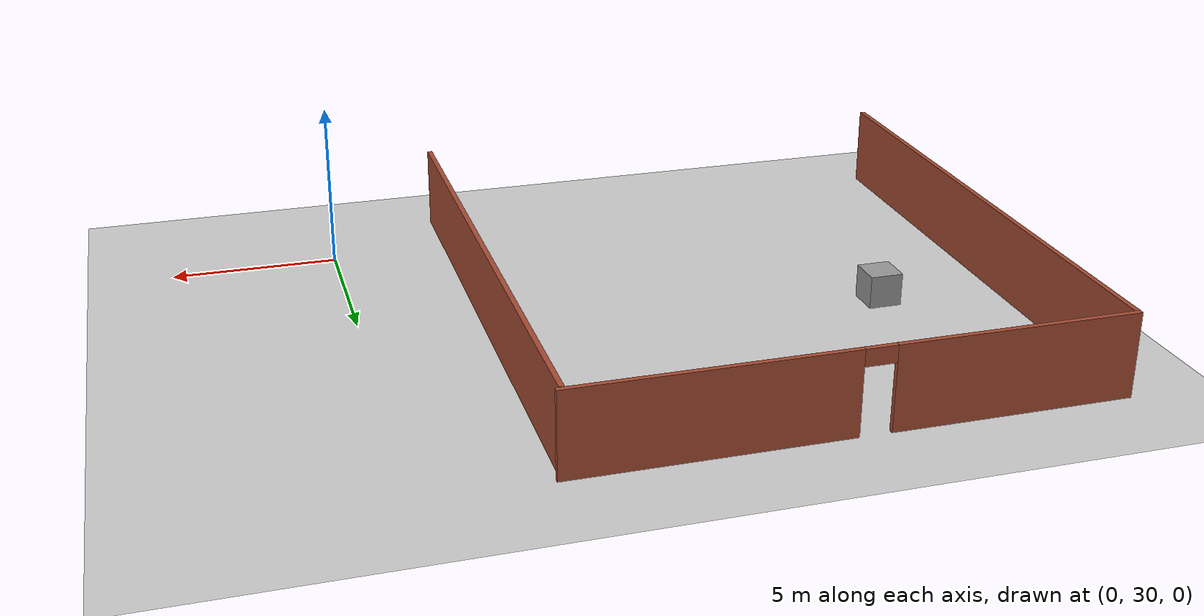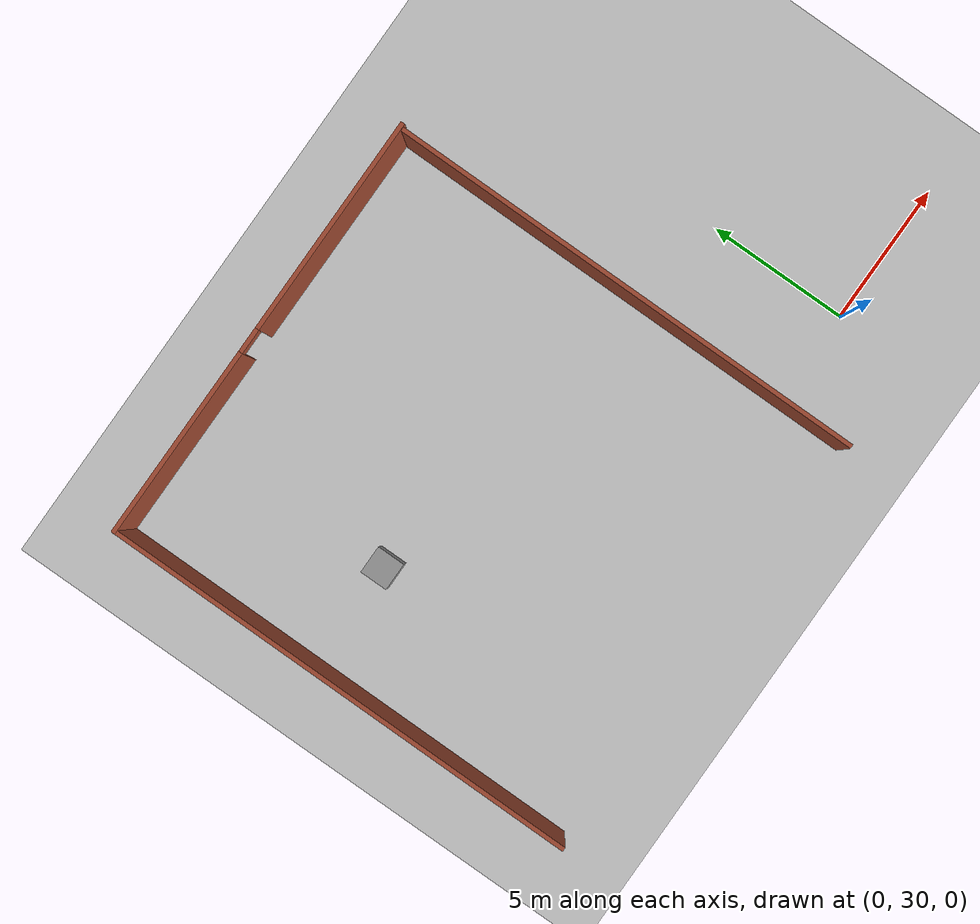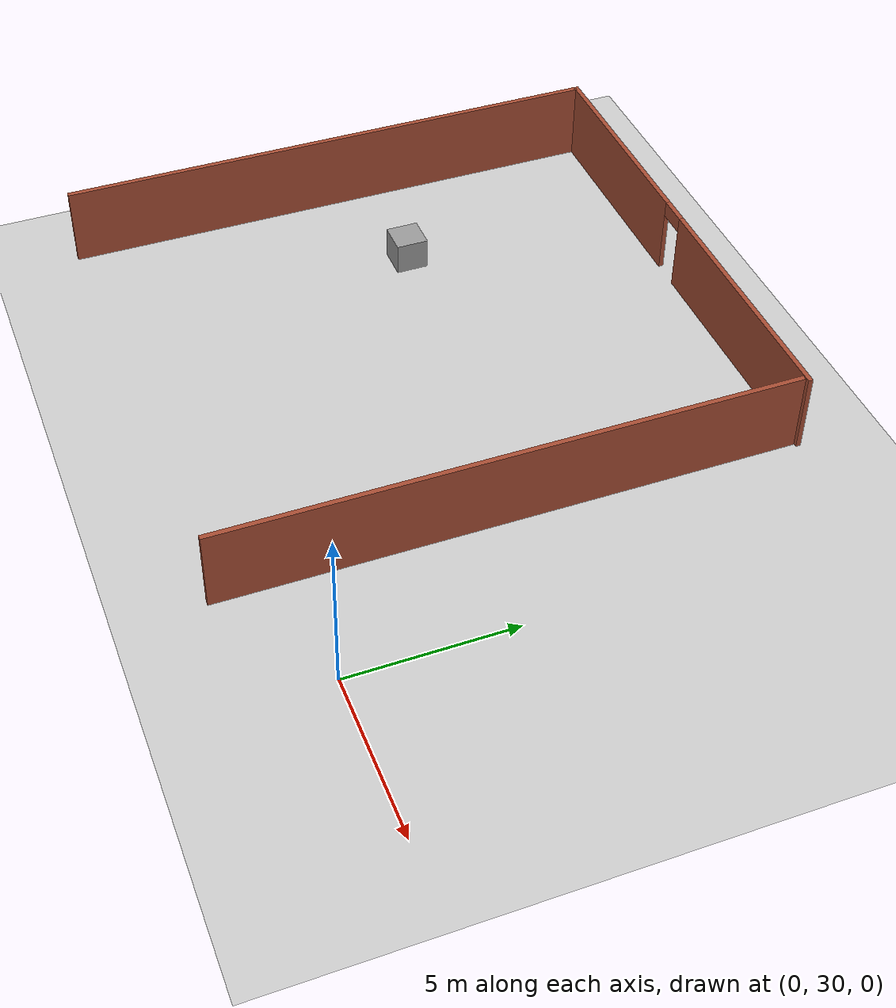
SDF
<sdf version="1.6">
 <world name="default">
  <model name="ground_plane">
   <static>1</static>
   <link name="link">
    <collision name="collision">
     <geometry><plane><normal>0 0 1</normal><size>100 100</size></plane></geometry>
     <surface><friction><ode><mu>100</mu><mu2>50</mu2></ode></friction></surface>
    </collision>
    <visual name="visual">
     <cast_shadows>0</cast_shadows>
     <geometry><plane><normal>0 0 1</normal><size>100 100</size></plane></geometry>
     <material>
      <script><uri>file://media/materials/scripts/gazebo.material</uri><name>Gazebo/Grey</name></script>
     </material>
    </visual>
   </link>
  </model>
  <model name="room_aa">
   <link name="Wall_15">
    <pose>0.315316 -4.25465 0 0 -0 0</pose>
    <visual name="Wall_15_Visual_0">
     <pose>-3.91595 0 1.25 0 -0 0</pose>
     <geometry><box><size>7.91811 0.15 2.5</size></box></geometry>
     <material>
      <script><uri>file://media/materials/scripts/gazebo.material</uri><name>Gazebo/Bricks</name></script>
      <ambient>1 1 1 1</ambient>
      <diffuse>1 1 1 1</diffuse>
      <specular>0.2 0.2 0.2 1</specular>
      <emissive>0 0 0 1</emissive>
     </material>
    </visual>
    <visual name="Wall_15_Visual_1">
     <pose>4.40905 0 1.25 0 -0 0</pose>
     <geometry><box><size>6.93189 0.15 2.5</size></box></geometry>
     <material>
      <script><uri>file://media/materials/scripts/gazebo.material</uri><name>Gazebo/Bricks</name></script>
      <ambient>1 1 1 1</ambient>
      <diffuse>1 1 1 1</diffuse>
      <specular>0.2 0.2 0.2 1</specular>
      <emissive>0 0 0 1</emissive>
     </material>
    </visual>
    <visual name="Wall_15_Visual_2">
     <pose>0.493108 0 2.25 0 -0 0</pose>
     <geometry><box><size>0.9 0.15 0.5</size></box></geometry>
     <material>
      <script><uri>file://media/materials/scripts/gazebo.material</uri><name>Gazebo/Bricks</name></script>
      <ambient>1 1 1 1</ambient>
      <diffuse>1 1 1 1</diffuse>
      <specular>0.2 0.2 0.2 1</specular>
      <emissive>0 0 0 1</emissive>
     </material>
    </visual>
    <collision name="Wall_15_Collision_0">
     <pose>-3.91595 0 1.25 0 -0 0</pose>
     <geometry><box><size>7.91811 0.15 2.5</size></box></geometry>
     <surface>
      <friction>
       <ode><mu>1</mu><mu2>1</mu2><fdir1>0 0 0</fdir1><slip1>0</slip1><slip2>0</slip2></ode>
       <torsional>
        <coefficient>1</coefficient>
        <patch_radius>0</patch_radius>
        <surface_radius>0</surface_radius>
        <use_patch_radius>1</use_patch_radius>
        <ode><slip>0</slip></ode>
       </torsional>
      </friction>
      <bounce><restitution_coefficient>0</restitution_coefficient><threshold>1e+06</threshold></bounce>
      <contact>
       <collide_without_contact>0</collide_without_contact>
       <collide_without_contact_bitmask>1</collide_without_contact_bitmask>
       <collide_bitmask>1</collide_bitmask>
       <ode>
        <soft_cfm>0</soft_cfm>
        <soft_erp>0.2</soft_erp>
        <kp>1e+13</kp>
        <kd>1</kd>
        <max_vel>0.01</max_vel>
        <min_depth>0</min_depth>
       </ode>
       <bullet>
        <split_impulse>1</split_impulse>
        <split_impulse_penetration_threshold>-0.01</split_impulse_penetration_threshold>
        <soft_cfm>0</soft_cfm>
        <soft_erp>0.2</soft_erp>
        <kp>1e+13</kp>
        <kd>1</kd>
       </bullet>
      </contact>
     </surface>
    </collision>
    <collision name="Wall_15_Collision_1">
     <pose>4.40905 0 1.25 0 -0 0</pose>
     <geometry><box><size>6.93189 0.15 2.5</size></box></geometry>
     <surface>
      <friction>
       <ode><mu>1</mu><mu2>1</mu2><fdir1>0 0 0</fdir1><slip1>0</slip1><slip2>0</slip2></ode>
       <torsional>
        <coefficient>1</coefficient>
        <patch_radius>0</patch_radius>
        <surface_radius>0</surface_radius>
        <use_patch_radius>1</use_patch_radius>
        <ode><slip>0</slip></ode>
       </torsional>
      </friction>
      <bounce><restitution_coefficient>0</restitution_coefficient><threshold>1e+06</threshold></bounce>
      <contact>
       <collide_without_contact>0</collide_without_contact>
       <collide_without_contact_bitmask>1</collide_without_contact_bitmask>
       <collide_bitmask>1</collide_bitmask>
       <ode>
        <soft_cfm>0</soft_cfm>
        <soft_erp>0.2</soft_erp>
        <kp>1e+13</kp>
        <kd>1</kd>
        <max_vel>0.01</max_vel>
        <min_depth>0</min_depth>
       </ode>
       <bullet>
        <split_impulse>1</split_impulse>
        <split_impulse_penetration_threshold>-0.01</split_impulse_penetration_threshold>
        <soft_cfm>0</soft_cfm>
        <soft_erp>0.2</soft_erp>
        <kp>1e+13</kp>
        <kd>1</kd>
       </bullet>
      </contact>
     </surface>
    </collision>
    <collision name="Wall_15_Collision_2">
     <pose>0.493108 0 2.25 0 -0 0</pose>
     <geometry><box><size>0.9 0.15 0.5</size></box></geometry>
     <surface>
      <friction>
       <ode><mu>1</mu><mu2>1</mu2><fdir1>0 0 0</fdir1><slip1>0</slip1><slip2>0</slip2></ode>
       <torsional>
        <coefficient>1</coefficient>
        <patch_radius>0</patch_radius>
        <surface_radius>0</surface_radius>
        <use_patch_radius>1</use_patch_radius>
        <ode><slip>0</slip></ode>
       </torsional>
      </friction>
      <bounce><restitution_coefficient>0</restitution_coefficient><threshold>1e+06</threshold></bounce>
      <contact>
       <collide_without_contact>0</collide_without_contact>
       <collide_without_contact_bitmask>1</collide_without_contact_bitmask>
       <collide_bitmask>1</collide_bitmask>
       <ode>
        <soft_cfm>0</soft_cfm>
        <soft_erp>0.2</soft_erp>
        <kp>1e+13</kp>
        <kd>1</kd>
        <max_vel>0.01</max_vel>
        <min_depth>0</min_depth>
       </ode>
       <bullet>
        <split_impulse>1</split_impulse>
        <split_impulse_penetration_threshold>-0.01</split_impulse_penetration_threshold>
        <soft_cfm>0</soft_cfm>
        <soft_erp>0.2</soft_erp>
        <kp>1e+13</kp>
        <kd>1</kd>
       </bullet>
      </contact>
     </surface>
    </collision>
   </link>
   <link name="Wall_16">
    <pose>8.12665 4.39648 0 0 -0 1.57</pose>
    <inertial>
     <mass>1</mass>
     <inertia><ixx>1</ixx><ixy>0</ixy><ixz>0</ixz><iyy>1</iyy><iyz>0</iyz><izz>1</izz></inertia>
    </inertial>
    <visual name="Wall_16_Visual">
     <pose>0 0 1.25 0 -0 0</pose>
     <geometry><box><size>17.2513 0.15 2.5</size></box></geometry>
     <material>
      <script><uri>file://media/materials/scripts/gazebo.material</uri><name>Gazebo/Bricks</name></script>
      <ambient>1 1 1 1</ambient>
      <diffuse>1 1 1 1</diffuse>
      <specular>0.2 0.2 0.2 1</specular>
      <emissive>0 0 0 1</emissive>
      <shader type="vertex"><normal_map>__default__</normal_map></shader>
     </material>
    </visual>
    <collision name="Wall_16_Collision">
     <pose>0 0 1.25 0 -0 0</pose>
     <geometry><box><size>17.2513 0.15 2.5</size></box></geometry>
     <surface>
      <friction>
       <ode><mu>1</mu><mu2>1</mu2><fdir1>0 0 0</fdir1><slip1>0</slip1><slip2>0</slip2></ode>
       <torsional>
        <coefficient>1</coefficient>
        <patch_radius>0</patch_radius>
        <surface_radius>0</surface_radius>
        <use_patch_radius>1</use_patch_radius>
        <ode><slip>0</slip></ode>
       </torsional>
      </friction>
      <bounce><restitution_coefficient>0</restitution_coefficient><threshold>1e+06</threshold></bounce>
      <contact>
       <collide_without_contact>0</collide_without_contact>
       <collide_without_contact_bitmask>1</collide_without_contact_bitmask>
       <collide_bitmask>1</collide_bitmask>
       <ode>
        <soft_cfm>0</soft_cfm>
        <soft_erp>0.2</soft_erp>
        <kp>1e+13</kp>
        <kd>1</kd>
        <max_vel>0.01</max_vel>
        <min_depth>0</min_depth>
       </ode>
       <bullet>
        <split_impulse>1</split_impulse>
        <split_impulse_penetration_threshold>-0.01</split_impulse_penetration_threshold>
        <soft_cfm>0</soft_cfm>
        <soft_erp>0.2</soft_erp>
        <kp>1e+13</kp>
        <kd>1</kd>
       </bullet>
      </contact>
     </surface>
    </collision>
   </link>
   <link name="Wall_21">
    <pose>-7.38543 4.46581 0 0 0 -1.5708</pose>
    <visual name="Wall_21_Visual">
     <pose>0 0 1.25 0 -0 0</pose>
     <geometry><box><size>17.25 0.15 2.5</size></box></geometry>
     <material>
      <script><uri>file://media/materials/scripts/gazebo.material</uri><name>Gazebo/Bricks</name></script>
      <ambient>1 1 1 1</ambient>
      <diffuse>1 1 1 1</diffuse>
      <specular>0.2 0.2 0.2 1</specular>
      <emissive>0 0 0 1</emissive>
     </material>
    </visual>
    <collision name="Wall_21_Collision">
     <pose>0 0 1.25 0 -0 0</pose>
     <geometry><box><size>17.25 0.15 2.5</size></box></geometry>
     <surface>
      <friction>
       <ode><mu>1</mu><mu2>1</mu2><fdir1>0 0 0</fdir1><slip1>0</slip1><slip2>0</slip2></ode>
       <torsional>
        <coefficient>1</coefficient>
        <patch_radius>0</patch_radius>
        <surface_radius>0</surface_radius>
        <use_patch_radius>1</use_patch_radius>
        <ode><slip>0</slip></ode>
       </torsional>
      </friction>
      <bounce><restitution_coefficient>0</restitution_coefficient><threshold>1e+06</threshold></bounce>
      <contact>
       <collide_without_contact>0</collide_without_contact>
       <collide_without_contact_bitmask>1</collide_without_contact_bitmask>
       <collide_bitmask>1</collide_bitmask>
       <ode>
        <soft_cfm>0</soft_cfm>
        <soft_erp>0.2</soft_erp>
        <kp>1e+13</kp>
        <kd>1</kd>
        <max_vel>0.01</max_vel>
        <min_depth>0</min_depth>
       </ode>
       <bullet>
        <split_impulse>1</split_impulse>
        <split_impulse_penetration_threshold>-0.01</split_impulse_penetration_threshold>
        <soft_cfm>0</soft_cfm>
        <soft_erp>0.2</soft_erp>
        <kp>1e+13</kp>
        <kd>1</kd>
       </bullet>
      </contact>
     </surface>
    </collision>
   </link>
   <static>1</static>
   <pose>-10.9602 40.6958 0 0 -0 3.14</pose>
  </model>
  <model name="unit_box_1">
   <pose>-15.3273 37.5011 0.5 0 -0 0</pose>
   <link name="link">
    <inertial>
     <mass>1</mass>
     <inertia>
      <ixx>0.166667</ixx>
      <ixy>0</ixy>
      <ixz>0</ixz>
      <iyy>0.166667</iyy>
      <iyz>0</iyz>
      <izz>0.166667</izz>
     </inertia>
    </inertial>
    <collision name="collision"><geometry><box><size>1 1 1</size></box></geometry></collision>
    <visual name="visual">
     <geometry><box><size>1 1 1</size></box></geometry>
     <material>
      <script><name>Gazebo/Grey</name><uri>file://media/materials/scripts/gazebo.material</uri></script>
     </material>
    </visual>
   </link>
  </model>
 </world>
</sdf>
